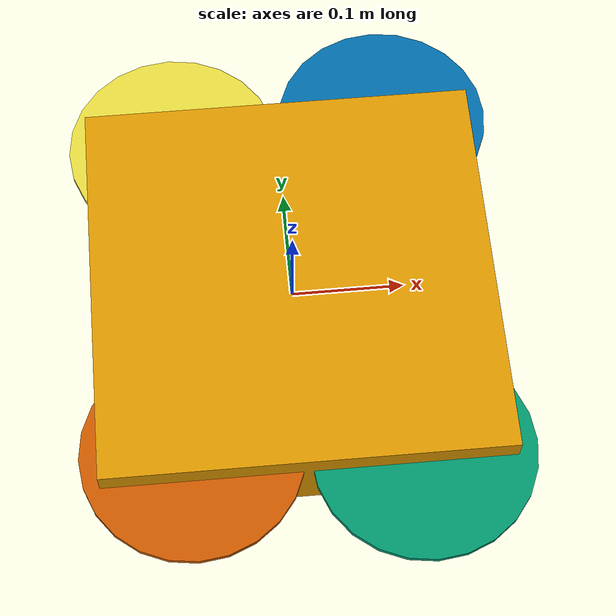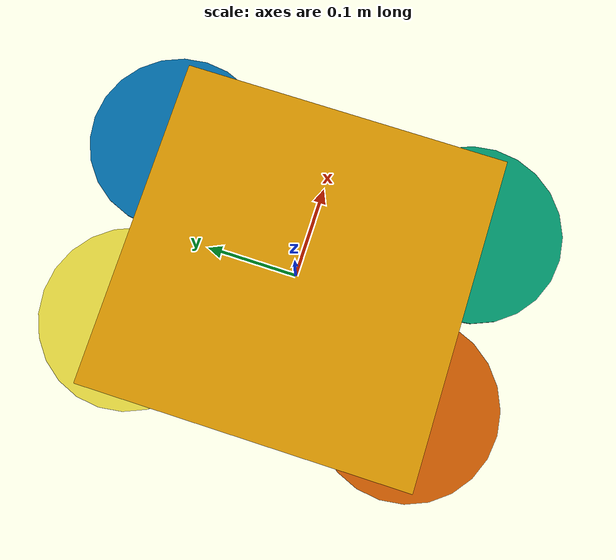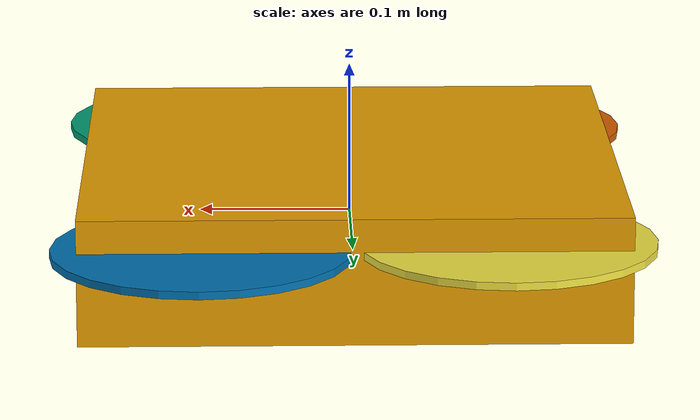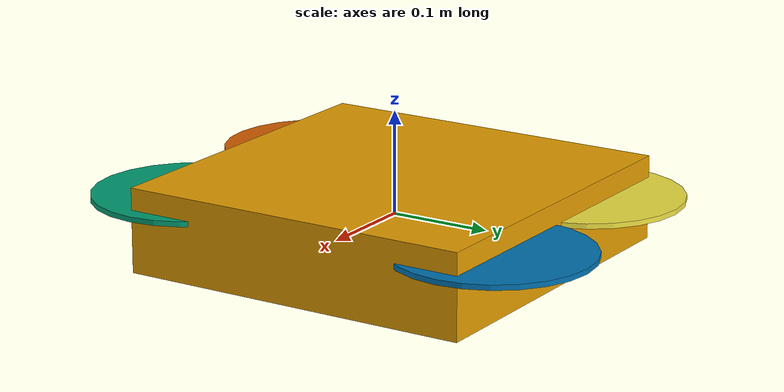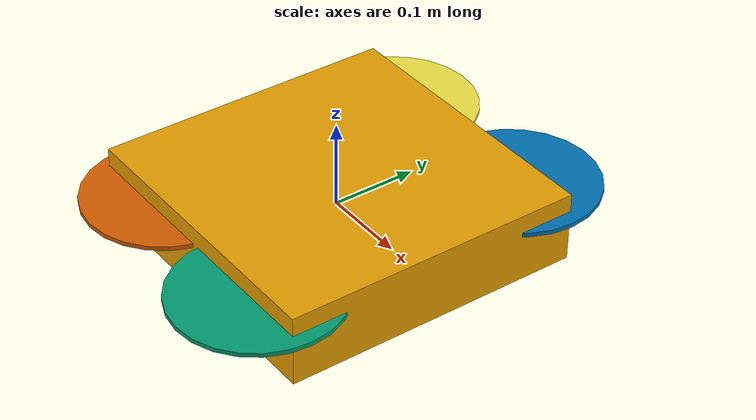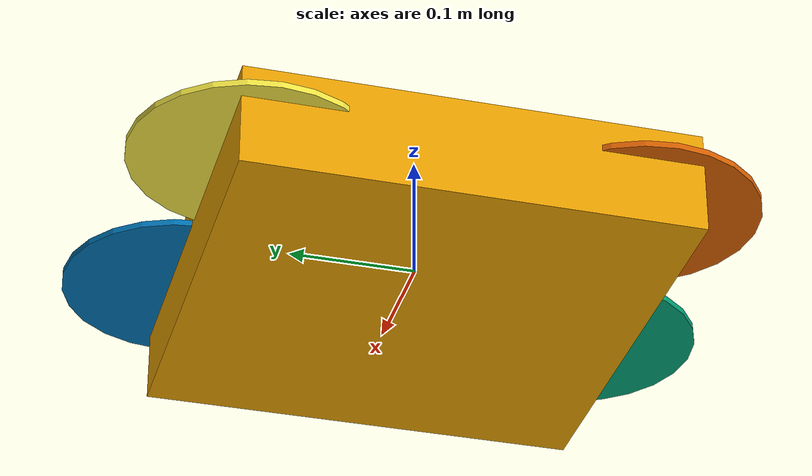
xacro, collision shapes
<?xml version="1.0"?>
<robot xmlns:xacro="http://www.ros.org/wiki/xacro" name="iris">

  <xacro:arg name="scale" default="0.75"/>
  <xacro:arg name="stl_path" default="mavlink_sitl_gazebo/models/iris/meshes"/>
  <xacro:property name="scale" value="$(arg scale)" />
  <xacro:property name="stl_path" value="$(arg stl_path)" />
  <xacro:include filename="$(find rtabmap_drone_example)/urdf/drone.gazebo"/>

   <link name='base_link'>
      <inertial>
        <origin xyz="0 0 0" rpy="0 0 0"/>
        <mass value="${1.5 * scale}"/>
        <inertia
	  ixx="${0.0347563 * scale}" ixy="0.0" ixz="0.0"
	  iyy="${0.0458929 * scale}" iyz="0.0"
	  izz="${0.0977 * scale}"/>
      </inertial>
      <collision>
        <origin xyz="0 0 0" rpy="0 0 0"/>
        <geometry>
          <box size="${0.47*scale} ${0.47*scale} ${0.11*scale}"/>
        </geometry>
      </collision>
      <visual>
        <origin xyz="0 0 0" rpy="0 0 0"/>
        <geometry>
          <mesh scale="${scale} ${scale} ${scale}" filename="package://${stl_path}/iris.stl"/>
        </geometry>
      </visual>
      <gravity>1</gravity>
      <velocity_decay/>
    </link>

    <link name='imu_link'>
      <inertial>
        <origin xyz="0 0 0" rpy="0 0 0"/>
        <mass value="0.015"/>
        <inertia
	  ixx="1e-05" ixy="0.0" ixz="0.0"
	  iyy="1e-05" iyz="0.0"
	  izz="1e-05"/>
      </inertial>
    </link>
    <joint name='imu_joint' type='revolute'>
      <parent link="base_link"/>
      <child link="imu_link"/>
      <origin xyz="0 0 0" rpy="0 0 0"/>
      <axis xyz="0 1 0"/>
      <limit lower="0" upper="0" effort="0" velocity="0"/>
    </joint>
    <link name='rotor_0'>
      <inertial>
        <origin xyz="0 0 0" rpy="0 0 0"/>
        <mass value="${0.005 * scale}"/>
        <inertia
	  ixx="9.75e-07" ixy="0.0" ixz="0.0"
	  iyy="0.000273104" iyz="0.0"
	  izz="0.000274004"/>
      </inertial>
      <collision name='rotor_0_collision'>
        <origin xyz="0 0 0" rpy="0 0 0"/>
        <geometry>
          <cylinder length="0.005" radius="${scale*0.128}"/>
        </geometry>
        <surface>
          <contact>
            <ode/>
          </contact>
          <friction>
            <ode/>
          </friction>
        </surface>
      </collision>
      <visual name='rotor_0_visual'>
        <origin xyz="0 0 0" rpy="0 0 0"/>
        <geometry>
          <mesh scale="${scale} ${scale} ${scale}" filename="package://${stl_path}/iris_prop_ccw.dae"/>
        </geometry>
      </visual>
      <gravity>1</gravity>
      <velocity_decay/>
    </link>
    <joint name='rotor_0_joint' type='revolute'>
      <parent link="base_link"/>
      <child link="rotor_0"/>
      <origin xyz="${scale*0.13} ${scale*-0.22} ${scale*0.023}" rpy="0 0 0"/>
      <axis xyz="0 0 1"/>
      <limit lower="-1e+16" upper="1e+16" effort="0" velocity="0"/>
    </joint>
    <link name='rotor_1'>
      <inertial>
        <origin xyz="0 0 0" rpy="0 0 0"/>
        <mass value="${0.005 * scale}"/>
        <inertia
	  ixx="9.75e-07" ixy="0.0" ixz="0.0"
	  iyy="0.000273104" iyz="0.0"
	  izz="0.000274004"/>
      </inertial>
      <collision name='rotor_1_collision'>
        <origin xyz="0 0 0" rpy="0 0 0"/>
        <geometry>
          <cylinder length="0.005" radius="${scale*0.128}"/>
        </geometry>
        <surface>
          <contact>
            <ode/>
          </contact>
          <friction>
            <ode/>
          </friction>
        </surface>
      </collision>
      <visual name='rotor_1_visual'>
        <origin xyz="0 0 0" rpy="0 0 0"/>
        <geometry>
          <mesh scale="${scale} ${scale} ${scale}" filename="package://${stl_path}/iris_prop_ccw.dae"/>
        </geometry>
      </visual>
      <gravity>1</gravity>
      <velocity_decay/>
    </link>
    <joint name='rotor_1_joint' type='revolute'>
      <parent link="base_link"/>
      <child link="rotor_1"/>
      <origin xyz="${scale*-0.13} ${scale*0.2} ${scale*0.023}" rpy="0 0 0"/>
      <axis xyz="0 0 1"/>
      <limit lower="-1e+16" upper="1e+16" effort="0" velocity="0"/>
    </joint>
    <link name='rotor_2'>
      <inertial>
        <origin xyz="0 0 0" rpy="0 0 0"/>
        <mass value="${0.005 * scale}"/>
        <inertia
	  ixx="9.75e-07" ixy="0.0" ixz="0.0"
	  iyy="0.000273104" iyz="0.0"
	  izz="0.000274004"/>
      </inertial>
      <collision name='rotor_2_collision'>
        <origin xyz="0 0 0" rpy="0 0 0"/>
        <geometry>
          <cylinder length="0.005" radius="${scale*0.128}"/>
        </geometry>
        <surface>
          <contact>
            <ode/>
          </contact>
          <friction>
            <ode/>
          </friction>
        </surface>
      </collision>
      <visual name='rotor_2_visual'>
        <origin xyz="0 0 0" rpy="0 0 0"/>
        <geometry>
          <mesh scale="${scale} ${scale} ${scale}" filename="package://${stl_path}/iris_prop_cw.dae"/>
        </geometry>
      </visual>
      <gravity>1</gravity>
      <velocity_decay/>
    </link>
    <joint name='rotor_2_joint' type='revolute'>
      <parent link="base_link"/>
      <child link="rotor_2"/>
      <origin xyz="${scale*0.13} ${scale*0.22} ${scale*0.023}" rpy="0 0 0"/>
      <axis xyz="0 0 1"/>
      <limit lower="-1e+16" upper="1e+16" effort="0" velocity="0"/>
    </joint>
    <link name='rotor_3'>
      <inertial>
        <origin xyz="0 0 0" rpy="0 0 0"/>
        <mass value="${0.005 * scale}"/>
        <inertia
	  ixx="9.75e-07" ixy="0.0" ixz="0.0"
	  iyy="0.000273104" iyz="0.0"
	  izz="0.000274004"/>
      </inertial>
      <collision name='rotor_3_collision'>
        <origin xyz="0 0 0" rpy="0 0 0"/>
        <geometry>
          <cylinder length="0.005" radius="${scale*0.128}"/>
        </geometry>
        <surface>
          <contact>
            <ode/>
          </contact>
          <friction>
            <ode/>
          </friction>
        </surface>
      </collision>
      <visual name='rotor_3_visual'>
        <origin xyz="0 0 0" rpy="0 0 0"/>
        <geometry>
          <mesh scale="${scale} ${scale} ${scale}" filename="package://${stl_path}/iris_prop_cw.dae"/>
        </geometry>
      </visual>
      <gravity>1</gravity>
      <velocity_decay/>
    </link>
    <joint name='rotor_3_joint' type='revolute'>
      <parent link="base_link"/>
      <child link="rotor_3"/>
      <origin xyz="${scale*-0.13} ${scale*-0.2} ${scale*0.023}" rpy="0 0 0"/>
      <axis xyz="0 0 1"/>
      <limit lower="-1e+16" upper="1e+16" effort="0" velocity="0"/>
    </joint>

  <joint name="imu_body_joint" type="fixed">
    <origin xyz="0.0 0 0.0" rpy="0 0 0" />
    <parent link="base_link"/>
    <child link="imu_body_link" />
  </joint>
  <link name='imu_body_link'>
     <inertial>
       <origin xyz="0 0 0" rpy="0 0 0"/>
       <mass value="0.00001"/>
       <inertia
	  ixx="1e-05" ixy="0.0" ixz="0.0"
	  iyy="1e-05" iyz="0.0"
	  izz="1e-05"/>
       </inertial>
  </link>
  <gazebo reference="imu_body_link">
      <sensor name="imu_body_sensor" type="imu">
        <plugin filename="libgazebo_ros_imu_sensor.so" name="imu_body_plugin">
          <topicName>body_imu/data_raw</topicName>
          <bodyName>imu_body_link</bodyName>
          <updateRateHZ>100</updateRateHZ>
          <gaussianNoise>0.01</gaussianNoise>
          <xyzOffset>0 0 0</xyzOffset>
          <rpyOffset>0 0 0</rpyOffset>
          <frameName>imu_body_link</frameName>
        </plugin>
      </sensor>
  </gazebo>

  <!-- Import macro for realsense-RS200 camera-->
  <xacro:include filename="$(find rtabmap_drone_example)/urdf/realsense-RS200.macro.xacro"/>

  <joint name="base_camera_joint" type="fixed">
    <origin xyz="${scale*0.1} 0 0" rpy="0 0 0" />
    <parent link="base_link"/>
    <child link="base_camera" />
  </joint>

  <link name='base_camera'/>

  <!-- Create camera instance -->
  <xacro:realsense-rs200 prefix="" parent="base_camera">
        <origin xyz="0 0 0" rpy="0 0 0" />
  </xacro:realsense-rs200>

</robot>

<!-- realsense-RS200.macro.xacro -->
<robot xmlns:xacro="http://ros.org/wiki/xacro">
<xacro:macro name="realsense-rs200" params="prefix parent *origin">

    <!-- Camera link -->
    <link name="${prefix}rs200_camera">
        <visual>
            <origin rpy="0 0 0" xyz="0 0 0"/>
            <geometry>
                <mesh filename="package://realsense_gazebo_plugin/models/realsense_camera/meshes/realsense.dae"/>
            </geometry>
        </visual>
        <collision>
            <geometry>
                <box size="0.0078 0.130 0.0192"/>
            </geometry>
        </collision>
        <inertial>
            <mass value="0.0615752"/>
            <origin rpy="0 0 0" xyz="0 0 0"/>
            <inertia ixx="9.108e-05"
                     ixy="0"
                     ixz="0"
                     iyy="2.51e-06"
                     iyz="0"
                     izz="8.931e-05"
            />
        </inertial>
    </link>

    <!-- Connect camera to parent frame-->
    <joint name="${prefix}realsense_joint" type="fixed">
        <parent link="${parent}"/>
        <child link="${prefix}rs200_camera"/>
        <xacro:insert_block name="origin"/>
    </joint>

    <!-- Virtual links representing the cameras positons and orientations-->
    <link name="${prefix}color" />
    <link name="${prefix}depth" />
    <link name="${prefix}ired1" />
    <link name="${prefix}ired2" />

    <!-- Joints positioning the virtual links with respect to the camera main link-->
    <joint name="${prefix}color_joint" type="fixed">
        <parent link="${prefix}rs200_camera" />
        <child link="${prefix}color" />
        <!-- The default position is change since in Rviz the cloud depth axis is Z not X-->
        <origin xyz="0 -0.046 0.004" rpy="${pi/2} ${pi} ${pi/2}"/>
    </joint>

    <joint name="${prefix}depth_joint" type="fixed">
        <parent link="${prefix}rs200_camera" />
        <child link="${prefix}depth" />
        <origin xyz="0 -0.03 0.004" rpy="0 0 0"/>
    </joint>

    <joint name="${prefix}ired1_joint" type="fixed">
        <parent link="${prefix}rs200_camera" />
        <child link="${prefix}ired1" />
        <origin xyz="0 -0.06 0.004" rpy="0 0 0"/>
    </joint>

    <joint name="${prefix}ired2_joint" type="fixed">
        <parent link="${prefix}rs200_camera" />
        <child link="${prefix}ired2" />
        <origin xyz="0 0.01 0.004" rpy="0 0 0"/>
    </joint>

<!-- GAZEBO DEFINITIONS ***************************************-->

    <!-- Load plugin to the model ("robot" in urdf format)-->
    <gazebo>
        <plugin name="${prefix}r200" filename="librealsense_gazebo_plugin.so"/>
    </gazebo>

    <!-- Load parameters to model's main link-->
    <gazebo reference="${prefix}rs200_camera">
        <self_collide>0</self_collide>
        <enable_wind>0</enable_wind>
        <kinematic>0</kinematic>
        <gravity>1</gravity>
        <mu2>1</mu2>
        <fdir1>0 0 0</fdir1>
        <kp>1e+13</kp>
        <kd>1</kd>

        <sensor name="color" type="camera">
            <pose frame="">0 -0.046 0.004 0 0 0</pose>
            <camera name="${prefix}rs200_camera">
            <horizontal_fov>2</horizontal_fov>
            <image>
                <width>640</width>
                <height>480</height>
                <format>RGB_INT8</format>
            </image>
            <clip>
                <near>0.1</near>
                <far>100</far>
            </clip>
            <noise>
                <type>gaussian</type>
                <mean>0.0</mean>
                <stddev>0.007</stddev>
            </noise>
            </camera>
            <always_on>1</always_on>
            <update_rate>60</update_rate>
            <visualize>1</visualize>
        </sensor>
        <sensor name="ired1" type="camera">
            <pose frame="">0 -0.06 0.004 0 0 0</pose>
            <camera name="${prefix}rs200_camera">
            <horizontal_fov>2</horizontal_fov>
            <image>
                <width>640</width>
                <height>480</height>
                <format>L_INT8</format>
            </image>
            <clip>
                <near>0.1</near>
                <far>100</far>
            </clip>
            <noise>
                <type>gaussian</type>
                <mean>0.0</mean>
                <stddev>0.05</stddev>
            </noise>
            </camera>
            <always_on>1</always_on>
            <update_rate>60</update_rate>
            <visualize>0</visualize>
        </sensor>
        <sensor name="ired2" type="camera">
            <pose frame="">0 0.01 0.004 0 0 0</pose>
            <camera name="${prefix}rs200_camera">
            <horizontal_fov>2</horizontal_fov>
            <image>
                <width>640</width>
                <height>480</height>
                <format>L_INT8</format>
            </image>
            <clip>
                <near>0.1</near>
                <far>100</far>
            </clip>
            <noise>
                <type>gaussian</type>
                <mean>0.0</mean>
                <stddev>0.05</stddev>
            </noise>
            </camera>
            <always_on>1</always_on>
            <update_rate>60</update_rate>
            <visualize>0</visualize>
        </sensor>
        <sensor name="depth" type="depth">
            <pose frame="">0 -0.03 0.004 0 0 0</pose>
            <camera name="${prefix}rs200_camera">
            <horizontal_fov>2</horizontal_fov>
            <image>
                    <width>640</width>
                    <height>480</height>
            </image>
            <clip>
                    <near>0.1</near>
                    <far>100</far>
            </clip>
            <noise>
                    <type>gaussian</type>
                    <mean>0.0</mean>
                    <stddev>0.100</stddev>
            </noise>
            </camera>
            <always_on>1</always_on>
            <update_rate>60</update_rate>
            <visualize>0</visualize>
        </sensor>
    </gazebo>

</xacro:macro>
</robot>
